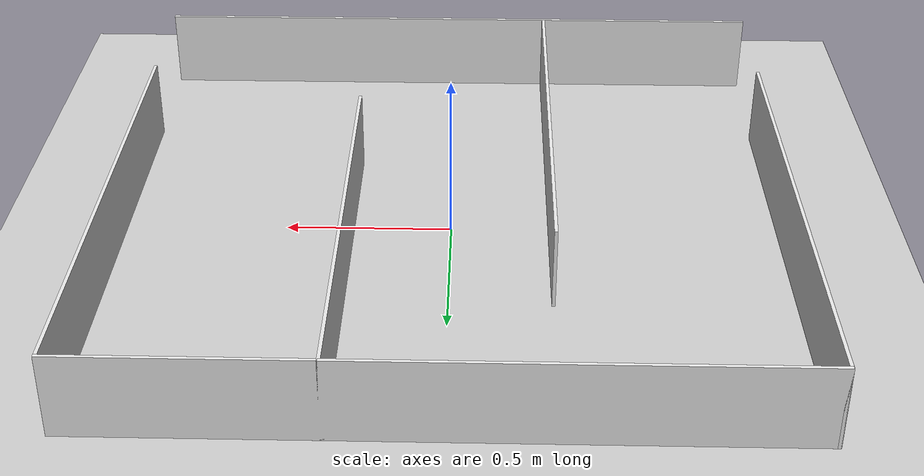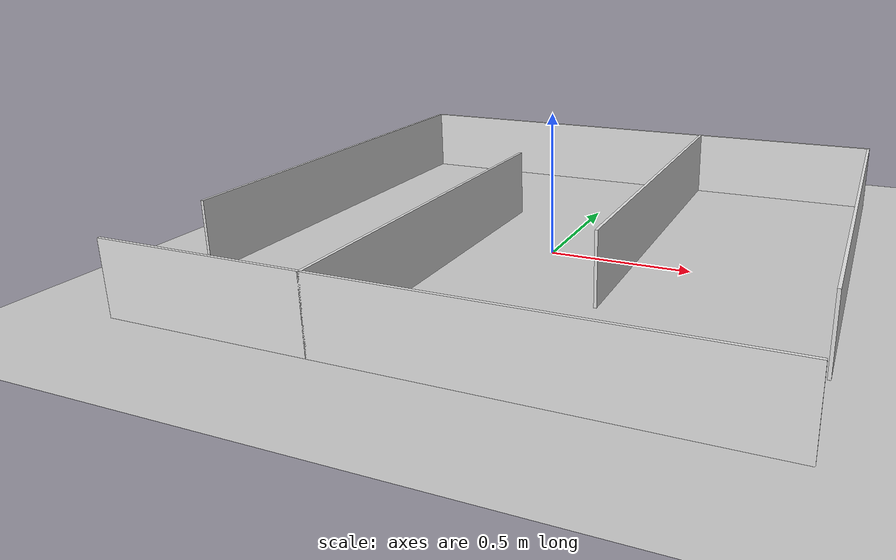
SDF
<?xml version="1.0"?>
<sdf version="1.6">
  <world name="project1_maze">
    <!-- Standard systems retained from the official Jazzy empty world. -->
    <plugin
      filename="gz-sim-physics-system"
      name="gz::sim::systems::Physics">
    </plugin>
    <plugin
      filename="gz-sim-user-commands-system"
      name="gz::sim::systems::UserCommands">
    </plugin>
    <plugin
      filename="gz-sim-scene-broadcaster-system"
      name="gz::sim::systems::SceneBroadcaster">
    </plugin>
    <plugin
      filename="gz-sim-sensors-system"
      name="gz::sim::systems::Sensors">
      <render_engine>ogre2</render_engine>
    </plugin>
    <plugin
      filename="gz-sim-imu-system"
      name="gz::sim::systems::Imu">
    </plugin>

    <include>
      <uri>https://fuel.gazebosim.org/1.0/OpenRobotics/models/Ground Plane</uri>
    </include>

    <include>
      <uri>https://fuel.gazebosim.org/1.0/OpenRobotics/models/Sun</uri>
    </include>

    <scene>
      <shadows>false</shadows>
    </scene>

    <gui fullscreen="0">
      <camera name="user_camera">
        <pose>0 0 4.25 0 1.5708 0</pose>
        <view_controller>orbit</view_controller>
        <projection_type>perspective</projection_type>
      </camera>
    </gui>

    <physics type="ode">
      <real_time_update_rate>1000.0</real_time_update_rate>
      <max_step_size>0.001</max_step_size>
      <real_time_factor>1</real_time_factor>
      <ode>
        <solver>
          <type>quick</type>
          <iters>150</iters>
          <precon_iters>0</precon_iters>
          <sor>1.4</sor>
          <use_dynamic_moi_rescaling>1</use_dynamic_moi_rescaling>
        </solver>
        <constraints>
          <cfm>0.00001</cfm>
          <erp>0.2</erp>
          <contact_max_correcting_vel>2000.0</contact_max_correcting_vel>
          <contact_surface_layer>0.01</contact_surface_layer>
        </constraints>
      </ode>
    </physics>

    <model name="project1_maze_walls">
      <static>true</static>

      <!-- South wall: 2.00 m long. Its inner face is y=-0.990 m. -->
      <link name="south_wall">
        <pose>0 -0.995 0.125 0 0 0</pose>
        <collision name="collision">
          <geometry>
            <box><size>2.00 0.01 0.25</size></box>
          </geometry>
        </collision>
        <visual name="visual">
          <geometry>
            <box><size>2.00 0.01 0.25</size></box>
          </geometry>
          <material>
            <ambient>0.90 0.90 0.90 1</ambient>
            <diffuse>0.90 0.90 0.90 1</diffuse>
          </material>
        </visual>
      </link>

      <!-- North wall: 2.00 m long. Its inner face is y=0.990 m. -->
      <link name="north_wall">
        <pose>0 0.995 0.125 0 0 0</pose>
        <collision name="collision">
          <geometry>
            <box><size>2.00 0.01 0.25</size></box>
          </geometry>
        </collision>
        <visual name="visual">
          <geometry>
            <box><size>2.00 0.01 0.25</size></box>
          </geometry>
          <material>
            <ambient>0.90 0.90 0.90 1</ambient>
            <diffuse>0.90 0.90 0.90 1</diffuse>
          </material>
        </visual>
      </link>

      <!--
        West wall: y=-0.60 to y=1.00 m.
        The missing lower 0.40 m is the entrance.
      -->
      <link name="west_wall">
        <pose>-0.995 0.20 0.125 0 0 0</pose>
        <collision name="collision">
          <geometry>
            <box><size>0.01 1.60 0.25</size></box>
          </geometry>
        </collision>
        <visual name="visual">
          <geometry>
            <box><size>0.01 1.60 0.25</size></box>
          </geometry>
          <material>
            <ambient>0.90 0.90 0.90 1</ambient>
            <diffuse>0.90 0.90 0.90 1</diffuse>
          </material>
        </visual>
      </link>

      <!--
        East wall: y=-0.60 to y=1.00 m.
        The missing lower 0.40 m is the exit.
      -->
      <link name="east_wall">
        <pose>0.995 0.20 0.125 0 0 0</pose>
        <collision name="collision">
          <geometry>
            <box><size>0.01 1.60 0.25</size></box>
          </geometry>
        </collision>
        <visual name="visual">
          <geometry>
            <box><size>0.01 1.60 0.25</size></box>
          </geometry>
          <material>
            <ambient>0.90 0.90 0.90 1</ambient>
            <diffuse>0.90 0.90 0.90 1</diffuse>
          </material>
        </visual>
      </link>

      <!--
        Baffle A: attached to the south wall.
        Centre x=-0.30 m; spans y=-1.00 to y=0.40 m.
      -->
      <link name="internal_baffle_a">
        <pose>-0.30 -0.30 0.125 0 0 0</pose>
        <collision name="collision">
          <geometry>
            <box><size>0.01 1.40 0.25</size></box>
          </geometry>
        </collision>
        <visual name="visual">
          <geometry>
            <box><size>0.01 1.40 0.25</size></box>
          </geometry>
          <material>
            <ambient>0.90 0.90 0.90 1</ambient>
            <diffuse>0.90 0.90 0.90 1</diffuse>
          </material>
        </visual>
      </link>

      <!--
        Baffle B: attached to the north wall.
        Centre x=0.30 m; spans y=-0.40 to y=1.00 m.
      -->
      <link name="internal_baffle_b">
        <pose>0.30 0.30 0.125 0 0 0</pose>
        <collision name="collision">
          <geometry>
            <box><size>0.01 1.40 0.25</size></box>
          </geometry>
        </collision>
        <visual name="visual">
          <geometry>
            <box><size>0.01 1.40 0.25</size></box>
          </geometry>
          <material>
            <ambient>0.90 0.90 0.90 1</ambient>
            <diffuse>0.90 0.90 0.90 1</diffuse>
          </material>
        </visual>
      </link>
    </model>
  </world>
</sdf>
